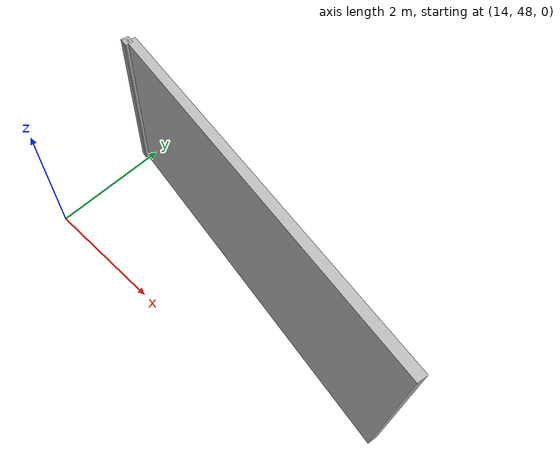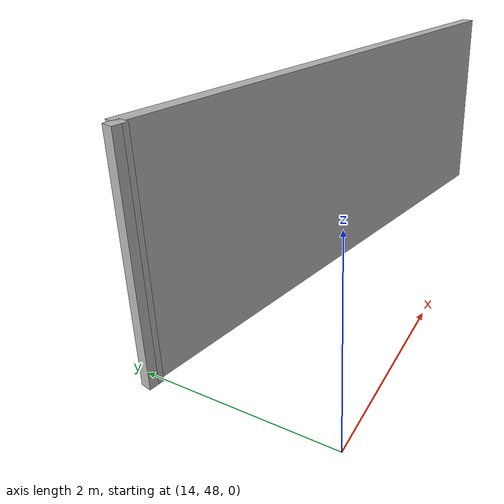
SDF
<?xml version="1.0" ?>
<sdf version="1.6">
  <model name="sps_1404">
    <pose frame="">0 0 0 0 -0 0</pose>
    <static>1</static>
    <self_collide>0</self_collide>
    <allow_auto_disable>0</allow_auto_disable>
    <link name="Wall350">
      <kinematic>0</kinematic>
      <gravity>1</gravity>
      <self_collide>0</self_collide>
      <collision name="collision">
        <geometry>
          <box>
            <size>0.12085 0.15 2.5</size>
          </box>
        </geometry>
        <pose frame="">0 0 0 0 -0 0</pose>
      </collision>
      <visual name="visual">
        <geometry>
          <box>
            <size>0.12085 0.15 2.5</size>
          </box>
        </geometry>
        <pose frame="">0 0 0 0 -0 0</pose>
        <cast_shadows>1</cast_shadows>
        <transparency>0.0</transparency>
      </visual>
      <pose frame="">13.9228 49.8713 1.25 0 0 -1.77215</pose>
    </link>
    <link name="Wall1723">
      <kinematic>0</kinematic>
      <gravity>1</gravity>
      <self_collide>0</self_collide>
      <collision name="collision">
        <geometry>
          <box>
            <size>5.9908 0.15 2.5</size>
          </box>
        </geometry>
        <pose frame="">0 0 0 0 -0 0</pose>
      </collision>
      <visual name="visual">
        <geometry>
          <box>
            <size>5.9908 0.15 2.5</size>
          </box>
        </geometry>
        <pose frame="">0 0 0 0 -0 0</pose>
        <cast_shadows>1</cast_shadows>
        <transparency>0.0</transparency>
      </visual>
      <pose frame="">16.8691 49.3262 1.25 0 -0 2.93845</pose>
    </link>
    <link name="Wall1724">
      <kinematic>0</kinematic>
      <gravity>1</gravity>
      <self_collide>0</self_collide>
      <collision name="collision">
        <geometry>
          <box>
            <size>0.120899 0.15 2.5</size>
          </box>
        </geometry>
        <pose frame="">0 0 0 0 -0 0</pose>
      </collision>
      <visual name="visual">
        <geometry>
          <box>
            <size>0.120899 0.15 2.5</size>
          </box>
        </geometry>
        <pose frame="">0 0 0 0 -0 0</pose>
        <cast_shadows>1</cast_shadows>
        <transparency>0.0</transparency>
      </visual>
      <pose frame="">13.9231 49.8713 1.25 0 0 -1.77413</pose>
    </link>
  </model>
</sdf>
